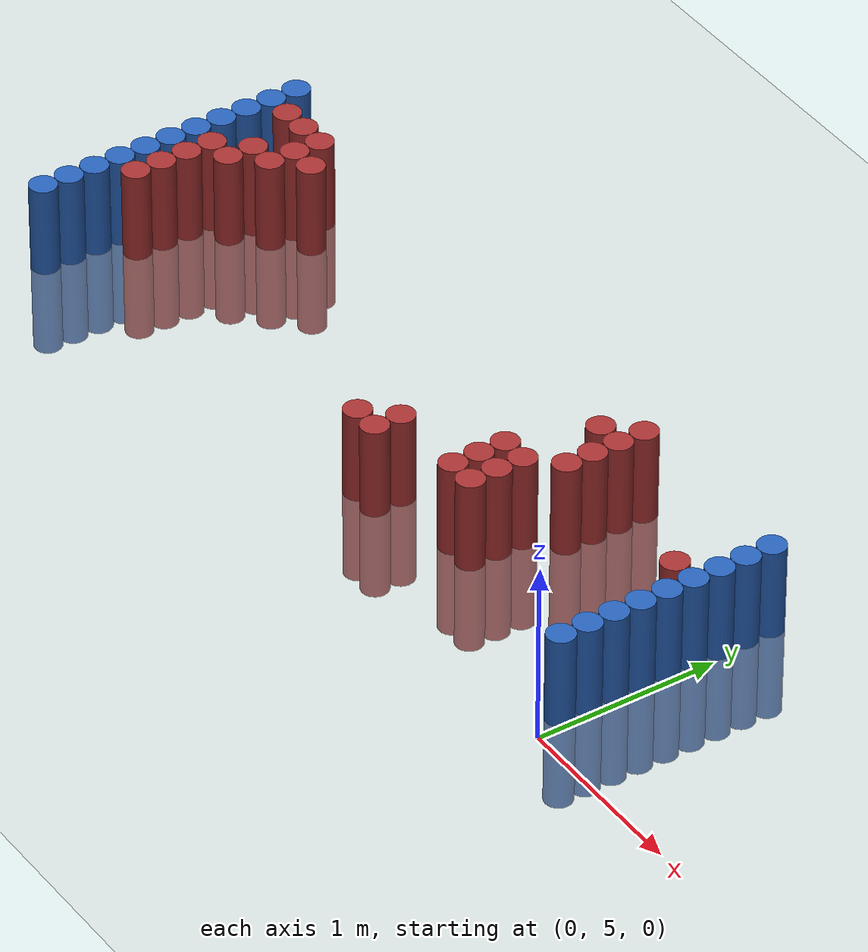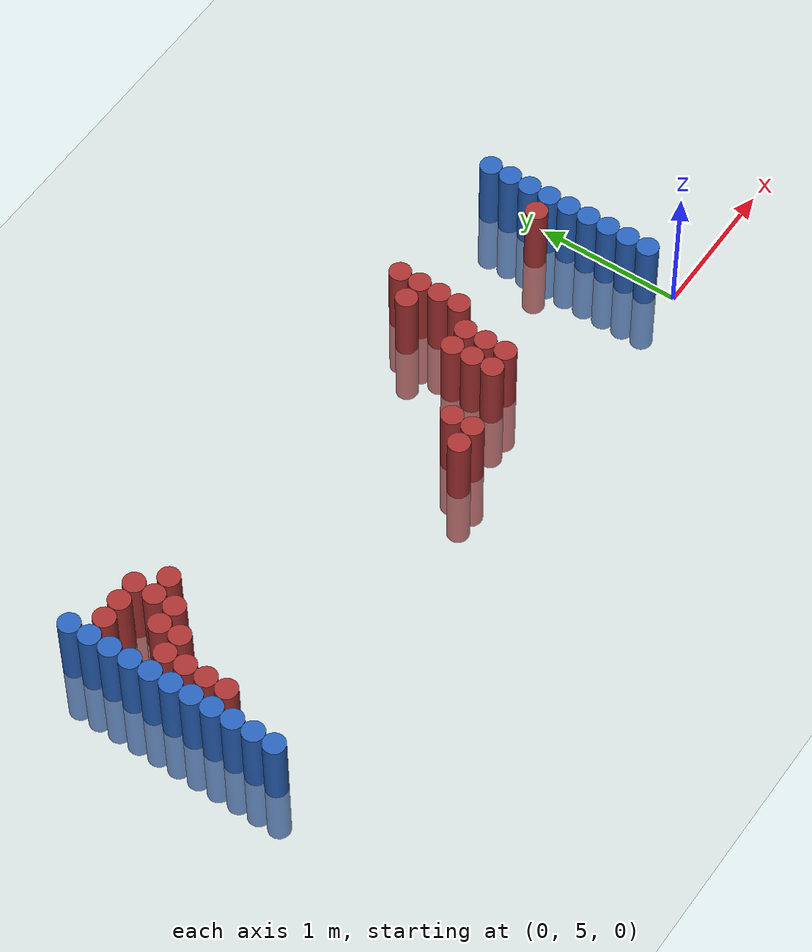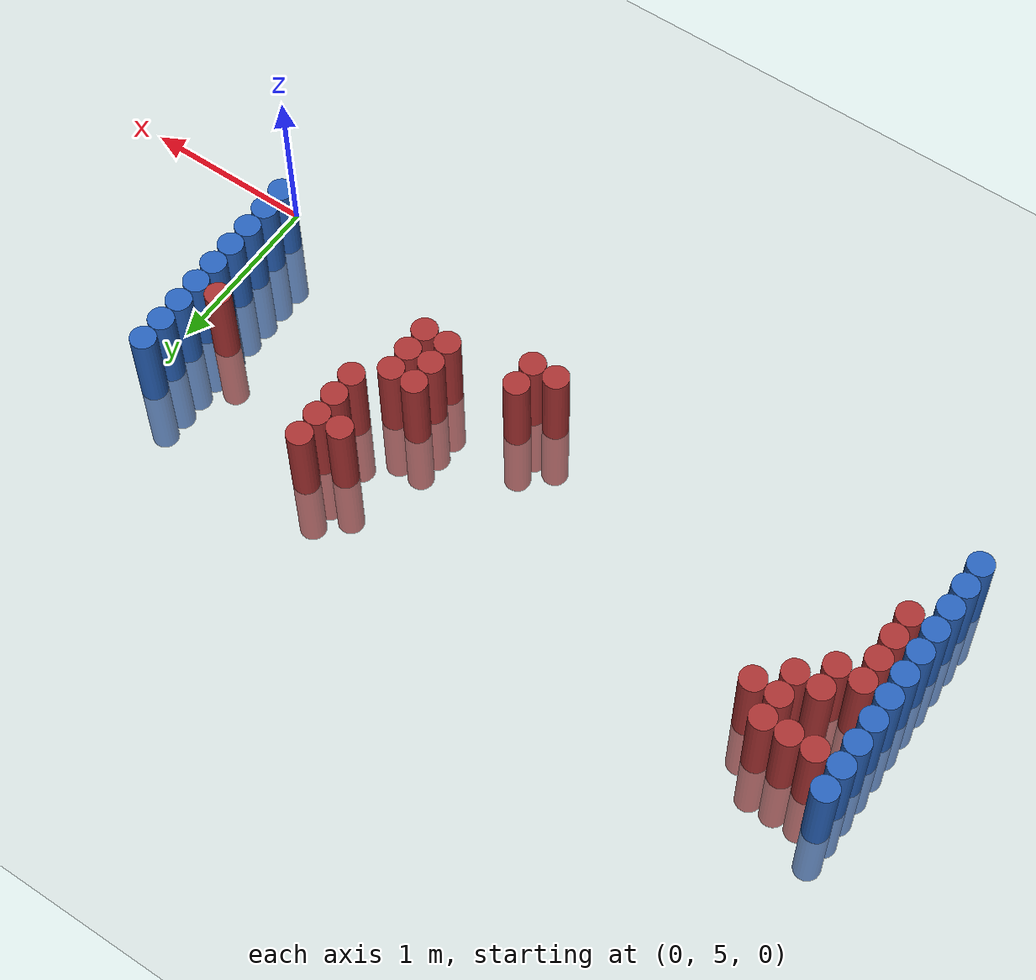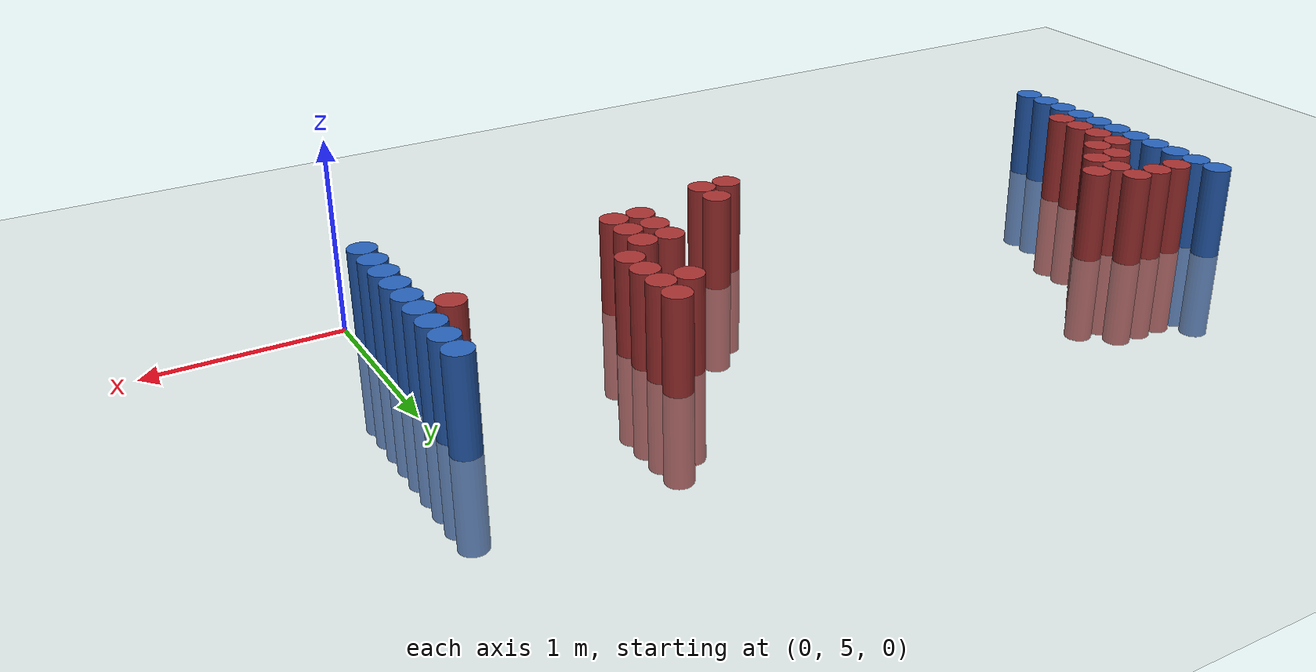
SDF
<sdf version="1.6">
 <world name="default">
  <model name="ground_plane">
   <static>1</static>
   <link name="link">
    <collision name="collision">
     <geometry><plane><normal>0 0 1</normal><size>100 100</size></plane></geometry>
     <surface><friction><ode><mu>100</mu><mu2>50</mu2></ode></friction></surface>
    </collision>
    <visual name="visual">
     <cast_shadows>0</cast_shadows>
     <geometry><plane><normal>0 0 1</normal><size>100 100</size></plane></geometry>
     <material>
      <script><uri>file://media/materials/scripts/gazebo.material</uri><name>Gazebo/Grey</name></script>
     </material>
    </visual>
   </link>
  </model>
  <model name="unit_cylinder_95">
   <static>1</static>
   <pose>-4.425000 5.025000 0.000000 0.000000 0.000000 0.000000</pose>
   <link name="link">
    <inertial>
     <mass>1</mass>
     <inertia><ixx>0.145833</ixx><ixy>0</ixy><ixz>0</ixz><iyy>0.145833</iyy><iyz>0</iyz><izz>0.125</izz></inertia>
    </inertial>
    <collision name="collision">
     <geometry><cylinder><radius>0.075000</radius><length>1</length></cylinder></geometry>
    </collision>
    <visual name="visual">
     <geometry><cylinder><radius>0.075000</radius><length>1</length></cylinder></geometry>
     <material>
      <ambient>0.152000 0.379000 0.720000 1</ambient>
      <diffuse>0.152000 0.379000 0.720000 1</diffuse>
     </material>
     <material>
      <script><name>Gazebo/Grey</name><uri>file://media/materials/scripts/gazebo.material</uri></script>
     </material>
    </visual>
   </link>
  </model>
  <model name="unit_cylinder_96">
   <static>1</static>
   <pose>-4.425000 5.175000 0.000000 0.000000 0.000000 0.000000</pose>
   <link name="link">
    <inertial>
     <mass>1</mass>
     <inertia><ixx>0.145833</ixx><ixy>0</ixy><ixz>0</ixz><iyy>0.145833</iyy><iyz>0</iyz><izz>0.125</izz></inertia>
    </inertial>
    <collision name="collision">
     <geometry><cylinder><radius>0.075000</radius><length>1</length></cylinder></geometry>
    </collision>
    <visual name="visual">
     <geometry><cylinder><radius>0.075000</radius><length>1</length></cylinder></geometry>
     <material>
      <ambient>0.152000 0.379000 0.720000 1</ambient>
      <diffuse>0.152000 0.379000 0.720000 1</diffuse>
     </material>
     <material>
      <script><name>Gazebo/Grey</name><uri>file://media/materials/scripts/gazebo.material</uri></script>
     </material>
    </visual>
   </link>
  </model>
  <model name="unit_cylinder_97">
   <static>1</static>
   <pose>-4.425000 5.325000 0.000000 0.000000 0.000000 0.000000</pose>
   <link name="link">
    <inertial>
     <mass>1</mass>
     <inertia><ixx>0.145833</ixx><ixy>0</ixy><ixz>0</ixz><iyy>0.145833</iyy><iyz>0</iyz><izz>0.125</izz></inertia>
    </inertial>
    <collision name="collision">
     <geometry><cylinder><radius>0.075000</radius><length>1</length></cylinder></geometry>
    </collision>
    <visual name="visual">
     <geometry><cylinder><radius>0.075000</radius><length>1</length></cylinder></geometry>
     <material>
      <ambient>0.152000 0.379000 0.720000 1</ambient>
      <diffuse>0.152000 0.379000 0.720000 1</diffuse>
     </material>
     <material>
      <script><name>Gazebo/Grey</name><uri>file://media/materials/scripts/gazebo.material</uri></script>
     </material>
    </visual>
   </link>
  </model>
  <model name="unit_cylinder_98">
   <static>1</static>
   <pose>-4.425000 5.475000 0.000000 0.000000 0.000000 0.000000</pose>
   <link name="link">
    <inertial>
     <mass>1</mass>
     <inertia><ixx>0.145833</ixx><ixy>0</ixy><ixz>0</ixz><iyy>0.145833</iyy><iyz>0</iyz><izz>0.125</izz></inertia>
    </inertial>
    <collision name="collision">
     <geometry><cylinder><radius>0.075000</radius><length>1</length></cylinder></geometry>
    </collision>
    <visual name="visual">
     <geometry><cylinder><radius>0.075000</radius><length>1</length></cylinder></geometry>
     <material>
      <ambient>0.152000 0.379000 0.720000 1</ambient>
      <diffuse>0.152000 0.379000 0.720000 1</diffuse>
     </material>
     <material>
      <script><name>Gazebo/Grey</name><uri>file://media/materials/scripts/gazebo.material</uri></script>
     </material>
    </visual>
   </link>
  </model>
  <model name="unit_cylinder_99">
   <static>1</static>
   <pose>-4.425000 5.625000 0.000000 0.000000 0.000000 0.000000</pose>
   <link name="link">
    <inertial>
     <mass>1</mass>
     <inertia><ixx>0.145833</ixx><ixy>0</ixy><ixz>0</ixz><iyy>0.145833</iyy><iyz>0</iyz><izz>0.125</izz></inertia>
    </inertial>
    <collision name="collision">
     <geometry><cylinder><radius>0.075000</radius><length>1</length></cylinder></geometry>
    </collision>
    <visual name="visual">
     <geometry><cylinder><radius>0.075000</radius><length>1</length></cylinder></geometry>
     <material>
      <ambient>0.152000 0.379000 0.720000 1</ambient>
      <diffuse>0.152000 0.379000 0.720000 1</diffuse>
     </material>
     <material>
      <script><name>Gazebo/Grey</name><uri>file://media/materials/scripts/gazebo.material</uri></script>
     </material>
    </visual>
   </link>
  </model>
  <model name="unit_cylinder_100">
   <static>1</static>
   <pose>-4.425000 5.775000 0.000000 0.000000 0.000000 0.000000</pose>
   <link name="link">
    <inertial>
     <mass>1</mass>
     <inertia><ixx>0.145833</ixx><ixy>0</ixy><ixz>0</ixz><iyy>0.145833</iyy><iyz>0</iyz><izz>0.125</izz></inertia>
    </inertial>
    <collision name="collision">
     <geometry><cylinder><radius>0.075000</radius><length>1</length></cylinder></geometry>
    </collision>
    <visual name="visual">
     <geometry><cylinder><radius>0.075000</radius><length>1</length></cylinder></geometry>
     <material>
      <ambient>0.152000 0.379000 0.720000 1</ambient>
      <diffuse>0.152000 0.379000 0.720000 1</diffuse>
     </material>
     <material>
      <script><name>Gazebo/Grey</name><uri>file://media/materials/scripts/gazebo.material</uri></script>
     </material>
    </visual>
   </link>
  </model>
  <model name="unit_cylinder_101">
   <static>1</static>
   <pose>-4.425000 5.925000 0.000000 0.000000 0.000000 0.000000</pose>
   <link name="link">
    <inertial>
     <mass>1</mass>
     <inertia><ixx>0.145833</ixx><ixy>0</ixy><ixz>0</ixz><iyy>0.145833</iyy><iyz>0</iyz><izz>0.125</izz></inertia>
    </inertial>
    <collision name="collision">
     <geometry><cylinder><radius>0.075000</radius><length>1</length></cylinder></geometry>
    </collision>
    <visual name="visual">
     <geometry><cylinder><radius>0.075000</radius><length>1</length></cylinder></geometry>
     <material>
      <ambient>0.152000 0.379000 0.720000 1</ambient>
      <diffuse>0.152000 0.379000 0.720000 1</diffuse>
     </material>
     <material>
      <script><name>Gazebo/Grey</name><uri>file://media/materials/scripts/gazebo.material</uri></script>
     </material>
    </visual>
   </link>
  </model>
  <model name="unit_cylinder_102">
   <static>1</static>
   <pose>-4.425000 6.075000 0.000000 0.000000 0.000000 0.000000</pose>
   <link name="link">
    <inertial>
     <mass>1</mass>
     <inertia><ixx>0.145833</ixx><ixy>0</ixy><ixz>0</ixz><iyy>0.145833</iyy><iyz>0</iyz><izz>0.125</izz></inertia>
    </inertial>
    <collision name="collision">
     <geometry><cylinder><radius>0.075000</radius><length>1</length></cylinder></geometry>
    </collision>
    <visual name="visual">
     <geometry><cylinder><radius>0.075000</radius><length>1</length></cylinder></geometry>
     <material>
      <ambient>0.152000 0.379000 0.720000 1</ambient>
      <diffuse>0.152000 0.379000 0.720000 1</diffuse>
     </material>
     <material>
      <script><name>Gazebo/Grey</name><uri>file://media/materials/scripts/gazebo.material</uri></script>
     </material>
    </visual>
   </link>
  </model>
  <model name="unit_cylinder_103">
   <static>1</static>
   <pose>-4.425000 6.225000 0.000000 0.000000 0.000000 0.000000</pose>
   <link name="link">
    <inertial>
     <mass>1</mass>
     <inertia><ixx>0.145833</ixx><ixy>0</ixy><ixz>0</ixz><iyy>0.145833</iyy><iyz>0</iyz><izz>0.125</izz></inertia>
    </inertial>
    <collision name="collision">
     <geometry><cylinder><radius>0.075000</radius><length>1</length></cylinder></geometry>
    </collision>
    <visual name="visual">
     <geometry><cylinder><radius>0.075000</radius><length>1</length></cylinder></geometry>
     <material>
      <ambient>0.152000 0.379000 0.720000 1</ambient>
      <diffuse>0.152000 0.379000 0.720000 1</diffuse>
     </material>
     <material>
      <script><name>Gazebo/Grey</name><uri>file://media/materials/scripts/gazebo.material</uri></script>
     </material>
    </visual>
   </link>
  </model>
  <model name="unit_cylinder_104">
   <static>1</static>
   <pose>-4.425000 6.375000 0.000000 0.000000 0.000000 0.000000</pose>
   <link name="link">
    <inertial>
     <mass>1</mass>
     <inertia><ixx>0.145833</ixx><ixy>0</ixy><ixz>0</ixz><iyy>0.145833</iyy><iyz>0</iyz><izz>0.125</izz></inertia>
    </inertial>
    <collision name="collision">
     <geometry><cylinder><radius>0.075000</radius><length>1</length></cylinder></geometry>
    </collision>
    <visual name="visual">
     <geometry><cylinder><radius>0.075000</radius><length>1</length></cylinder></geometry>
     <material>
      <ambient>0.152000 0.379000 0.720000 1</ambient>
      <diffuse>0.152000 0.379000 0.720000 1</diffuse>
     </material>
     <material>
      <script><name>Gazebo/Grey</name><uri>file://media/materials/scripts/gazebo.material</uri></script>
     </material>
    </visual>
   </link>
  </model>
  <model name="unit_cylinder_105">
   <static>1</static>
   <pose>-4.425000 6.525000 0.000000 0.000000 0.000000 0.000000</pose>
   <link name="link">
    <inertial>
     <mass>1</mass>
     <inertia><ixx>0.145833</ixx><ixy>0</ixy><ixz>0</ixz><iyy>0.145833</iyy><iyz>0</iyz><izz>0.125</izz></inertia>
    </inertial>
    <collision name="collision">
     <geometry><cylinder><radius>0.075000</radius><length>1</length></cylinder></geometry>
    </collision>
    <visual name="visual">
     <geometry><cylinder><radius>0.075000</radius><length>1</length></cylinder></geometry>
     <material>
      <ambient>0.152000 0.379000 0.720000 1</ambient>
      <diffuse>0.152000 0.379000 0.720000 1</diffuse>
     </material>
     <material>
      <script><name>Gazebo/Grey</name><uri>file://media/materials/scripts/gazebo.material</uri></script>
     </material>
    </visual>
   </link>
  </model>
  <model name="unit_cylinder_126">
   <static>1</static>
   <pose>-4.275000 5.475000 0.000000 0.000000 0.000000 0.000000</pose>
   <link name="link">
    <inertial>
     <mass>1</mass>
     <inertia><ixx>0.145833</ixx><ixy>0</ixy><ixz>0</ixz><iyy>0.145833</iyy><iyz>0</iyz><izz>0.125</izz></inertia>
    </inertial>
    <collision name="collision">
     <geometry><cylinder><radius>0.075000</radius><length>1</length></cylinder></geometry>
    </collision>
    <visual name="visual">
     <geometry><cylinder><radius>0.075000</radius><length>1</length></cylinder></geometry>
     <material>
      <ambient>0.648000 0.192000 0.192000 1</ambient>
      <diffuse>0.648000 0.192000 0.192000 1</diffuse>
     </material>
     <material>
      <script><name>Gazebo/Grey</name><uri>file://media/materials/scripts/gazebo.material</uri></script>
     </material>
    </visual>
   </link>
  </model>
  <model name="unit_cylinder_127">
   <static>1</static>
   <pose>-4.275000 5.625000 0.000000 0.000000 0.000000 0.000000</pose>
   <link name="link">
    <inertial>
     <mass>1</mass>
     <inertia><ixx>0.145833</ixx><ixy>0</ixy><ixz>0</ixz><iyy>0.145833</iyy><iyz>0</iyz><izz>0.125</izz></inertia>
    </inertial>
    <collision name="collision">
     <geometry><cylinder><radius>0.075000</radius><length>1</length></cylinder></geometry>
    </collision>
    <visual name="visual">
     <geometry><cylinder><radius>0.075000</radius><length>1</length></cylinder></geometry>
     <material>
      <ambient>0.648000 0.192000 0.192000 1</ambient>
      <diffuse>0.648000 0.192000 0.192000 1</diffuse>
     </material>
     <material>
      <script><name>Gazebo/Grey</name><uri>file://media/materials/scripts/gazebo.material</uri></script>
     </material>
    </visual>
   </link>
  </model>
  <model name="unit_cylinder_128">
   <static>1</static>
   <pose>-4.275000 5.775000 0.000000 0.000000 0.000000 0.000000</pose>
   <link name="link">
    <inertial>
     <mass>1</mass>
     <inertia><ixx>0.145833</ixx><ixy>0</ixy><ixz>0</ixz><iyy>0.145833</iyy><iyz>0</iyz><izz>0.125</izz></inertia>
    </inertial>
    <collision name="collision">
     <geometry><cylinder><radius>0.075000</radius><length>1</length></cylinder></geometry>
    </collision>
    <visual name="visual">
     <geometry><cylinder><radius>0.075000</radius><length>1</length></cylinder></geometry>
     <material>
      <ambient>0.648000 0.192000 0.192000 1</ambient>
      <diffuse>0.648000 0.192000 0.192000 1</diffuse>
     </material>
     <material>
      <script><name>Gazebo/Grey</name><uri>file://media/materials/scripts/gazebo.material</uri></script>
     </material>
    </visual>
   </link>
  </model>
  <model name="unit_cylinder_129">
   <static>1</static>
   <pose>-4.275000 5.925000 0.000000 0.000000 0.000000 0.000000</pose>
   <link name="link">
    <inertial>
     <mass>1</mass>
     <inertia><ixx>0.145833</ixx><ixy>0</ixy><ixz>0</ixz><iyy>0.145833</iyy><iyz>0</iyz><izz>0.125</izz></inertia>
    </inertial>
    <collision name="collision">
     <geometry><cylinder><radius>0.075000</radius><length>1</length></cylinder></geometry>
    </collision>
    <visual name="visual">
     <geometry><cylinder><radius>0.075000</radius><length>1</length></cylinder></geometry>
     <material>
      <ambient>0.648000 0.192000 0.192000 1</ambient>
      <diffuse>0.648000 0.192000 0.192000 1</diffuse>
     </material>
     <material>
      <script><name>Gazebo/Grey</name><uri>file://media/materials/scripts/gazebo.material</uri></script>
     </material>
    </visual>
   </link>
  </model>
  <model name="unit_cylinder_130">
   <static>1</static>
   <pose>-4.275000 6.375000 0.000000 0.000000 0.000000 0.000000</pose>
   <link name="link">
    <inertial>
     <mass>1</mass>
     <inertia><ixx>0.145833</ixx><ixy>0</ixy><ixz>0</ixz><iyy>0.145833</iyy><iyz>0</iyz><izz>0.125</izz></inertia>
    </inertial>
    <collision name="collision">
     <geometry><cylinder><radius>0.075000</radius><length>1</length></cylinder></geometry>
    </collision>
    <visual name="visual">
     <geometry><cylinder><radius>0.075000</radius><length>1</length></cylinder></geometry>
     <material>
      <ambient>0.648000 0.192000 0.192000 1</ambient>
      <diffuse>0.648000 0.192000 0.192000 1</diffuse>
     </material>
     <material>
      <script><name>Gazebo/Grey</name><uri>file://media/materials/scripts/gazebo.material</uri></script>
     </material>
    </visual>
   </link>
  </model>
  <model name="unit_cylinder_134">
   <static>1</static>
   <pose>-4.125000 5.925000 0.000000 0.000000 0.000000 0.000000</pose>
   <link name="link">
    <inertial>
     <mass>1</mass>
     <inertia><ixx>0.145833</ixx><ixy>0</ixy><ixz>0</ixz><iyy>0.145833</iyy><iyz>0</iyz><izz>0.125</izz></inertia>
    </inertial>
    <collision name="collision">
     <geometry><cylinder><radius>0.075000</radius><length>1</length></cylinder></geometry>
    </collision>
    <visual name="visual">
     <geometry><cylinder><radius>0.075000</radius><length>1</length></cylinder></geometry>
     <material>
      <ambient>0.648000 0.192000 0.192000 1</ambient>
      <diffuse>0.648000 0.192000 0.192000 1</diffuse>
     </material>
     <material>
      <script><name>Gazebo/Grey</name><uri>file://media/materials/scripts/gazebo.material</uri></script>
     </material>
    </visual>
   </link>
  </model>
  <model name="unit_cylinder_135">
   <static>1</static>
   <pose>-4.125000 6.075000 0.000000 0.000000 0.000000 0.000000</pose>
   <link name="link">
    <inertial>
     <mass>1</mass>
     <inertia><ixx>0.145833</ixx><ixy>0</ixy><ixz>0</ixz><iyy>0.145833</iyy><iyz>0</iyz><izz>0.125</izz></inertia>
    </inertial>
    <collision name="collision">
     <geometry><cylinder><radius>0.075000</radius><length>1</length></cylinder></geometry>
    </collision>
    <visual name="visual">
     <geometry><cylinder><radius>0.075000</radius><length>1</length></cylinder></geometry>
     <material>
      <ambient>0.648000 0.192000 0.192000 1</ambient>
      <diffuse>0.648000 0.192000 0.192000 1</diffuse>
     </material>
     <material>
      <script><name>Gazebo/Grey</name><uri>file://media/materials/scripts/gazebo.material</uri></script>
     </material>
    </visual>
   </link>
  </model>
  <model name="unit_cylinder_136">
   <static>1</static>
   <pose>-4.125000 6.375000 0.000000 0.000000 0.000000 0.000000</pose>
   <link name="link">
    <inertial>
     <mass>1</mass>
     <inertia><ixx>0.145833</ixx><ixy>0</ixy><ixz>0</ixz><iyy>0.145833</iyy><iyz>0</iyz><izz>0.125</izz></inertia>
    </inertial>
    <collision name="collision">
     <geometry><cylinder><radius>0.075000</radius><length>1</length></cylinder></geometry>
    </collision>
    <visual name="visual">
     <geometry><cylinder><radius>0.075000</radius><length>1</length></cylinder></geometry>
     <material>
      <ambient>0.648000 0.192000 0.192000 1</ambient>
      <diffuse>0.648000 0.192000 0.192000 1</diffuse>
     </material>
     <material>
      <script><name>Gazebo/Grey</name><uri>file://media/materials/scripts/gazebo.material</uri></script>
     </material>
    </visual>
   </link>
  </model>
  <model name="unit_cylinder_137">
   <static>1</static>
   <pose>-3.975000 6.075000 0.000000 0.000000 0.000000 0.000000</pose>
   <link name="link">
    <inertial>
     <mass>1</mass>
     <inertia><ixx>0.145833</ixx><ixy>0</ixy><ixz>0</ixz><iyy>0.145833</iyy><iyz>0</iyz><izz>0.125</izz></inertia>
    </inertial>
    <collision name="collision">
     <geometry><cylinder><radius>0.075000</radius><length>1</length></cylinder></geometry>
    </collision>
    <visual name="visual">
     <geometry><cylinder><radius>0.075000</radius><length>1</length></cylinder></geometry>
     <material>
      <ambient>0.648000 0.192000 0.192000 1</ambient>
      <diffuse>0.648000 0.192000 0.192000 1</diffuse>
     </material>
     <material>
      <script><name>Gazebo/Grey</name><uri>file://media/materials/scripts/gazebo.material</uri></script>
     </material>
    </visual>
   </link>
  </model>
  <model name="unit_cylinder_138">
   <static>1</static>
   <pose>-3.975000 6.225000 0.000000 0.000000 0.000000 0.000000</pose>
   <link name="link">
    <inertial>
     <mass>1</mass>
     <inertia><ixx>0.145833</ixx><ixy>0</ixy><ixz>0</ixz><iyy>0.145833</iyy><iyz>0</iyz><izz>0.125</izz></inertia>
    </inertial>
    <collision name="collision">
     <geometry><cylinder><radius>0.075000</radius><length>1</length></cylinder></geometry>
    </collision>
    <visual name="visual">
     <geometry><cylinder><radius>0.075000</radius><length>1</length></cylinder></geometry>
     <material>
      <ambient>0.648000 0.192000 0.192000 1</ambient>
      <diffuse>0.648000 0.192000 0.192000 1</diffuse>
     </material>
     <material>
      <script><name>Gazebo/Grey</name><uri>file://media/materials/scripts/gazebo.material</uri></script>
     </material>
    </visual>
   </link>
  </model>
  <model name="unit_cylinder_139">
   <static>1</static>
   <pose>-3.975000 6.375000 0.000000 0.000000 0.000000 0.000000</pose>
   <link name="link">
    <inertial>
     <mass>1</mass>
     <inertia><ixx>0.145833</ixx><ixy>0</ixy><ixz>0</ixz><iyy>0.145833</iyy><iyz>0</iyz><izz>0.125</izz></inertia>
    </inertial>
    <collision name="collision">
     <geometry><cylinder><radius>0.075000</radius><length>1</length></cylinder></geometry>
    </collision>
    <visual name="visual">
     <geometry><cylinder><radius>0.075000</radius><length>1</length></cylinder></geometry>
     <material>
      <ambient>0.648000 0.192000 0.192000 1</ambient>
      <diffuse>0.648000 0.192000 0.192000 1</diffuse>
     </material>
     <material>
      <script><name>Gazebo/Grey</name><uri>file://media/materials/scripts/gazebo.material</uri></script>
     </material>
    </visual>
   </link>
  </model>
  <model name="unit_cylinder_140">
   <static>1</static>
   <pose>-3.825000 6.225000 0.000000 0.000000 0.000000 0.000000</pose>
   <link name="link">
    <inertial>
     <mass>1</mass>
     <inertia><ixx>0.145833</ixx><ixy>0</ixy><ixz>0</ixz><iyy>0.145833</iyy><iyz>0</iyz><izz>0.125</izz></inertia>
    </inertial>
    <collision name="collision">
     <geometry><cylinder><radius>0.075000</radius><length>1</length></cylinder></geometry>
    </collision>
    <visual name="visual">
     <geometry><cylinder><radius>0.075000</radius><length>1</length></cylinder></geometry>
     <material>
      <ambient>0.648000 0.192000 0.192000 1</ambient>
      <diffuse>0.648000 0.192000 0.192000 1</diffuse>
     </material>
     <material>
      <script><name>Gazebo/Grey</name><uri>file://media/materials/scripts/gazebo.material</uri></script>
     </material>
    </visual>
   </link>
  </model>
  <model name="unit_cylinder_145">
   <static>1</static>
   <pose>-2.025000 5.325000 0.000000 0.000000 0.000000 0.000000</pose>
   <link name="link">
    <inertial>
     <mass>1</mass>
     <inertia><ixx>0.145833</ixx><ixy>0</ixy><ixz>0</ixz><iyy>0.145833</iyy><iyz>0</iyz><izz>0.125</izz></inertia>
    </inertial>
    <collision name="collision">
     <geometry><cylinder><radius>0.075000</radius><length>1</length></cylinder></geometry>
    </collision>
    <visual name="visual">
     <geometry><cylinder><radius>0.075000</radius><length>1</length></cylinder></geometry>
     <material>
      <ambient>0.648000 0.192000 0.192000 1</ambient>
      <diffuse>0.648000 0.192000 0.192000 1</diffuse>
     </material>
     <material>
      <script><name>Gazebo/Grey</name><uri>file://media/materials/scripts/gazebo.material</uri></script>
     </material>
    </visual>
   </link>
  </model>
  <model name="unit_cylinder_149">
   <static>1</static>
   <pose>-1.875000 5.325000 0.000000 0.000000 0.000000 0.000000</pose>
   <link name="link">
    <inertial>
     <mass>1</mass>
     <inertia><ixx>0.145833</ixx><ixy>0</ixy><ixz>0</ixz><iyy>0.145833</iyy><iyz>0</iyz><izz>0.125</izz></inertia>
    </inertial>
    <collision name="collision">
     <geometry><cylinder><radius>0.075000</radius><length>1</length></cylinder></geometry>
    </collision>
    <visual name="visual">
     <geometry><cylinder><radius>0.075000</radius><length>1</length></cylinder></geometry>
     <material>
      <ambient>0.648000 0.192000 0.192000 1</ambient>
      <diffuse>0.648000 0.192000 0.192000 1</diffuse>
     </material>
     <material>
      <script><name>Gazebo/Grey</name><uri>file://media/materials/scripts/gazebo.material</uri></script>
     </material>
    </visual>
   </link>
  </model>
  <model name="unit_cylinder_150">
   <static>1</static>
   <pose>-1.875000 5.475000 0.000000 0.000000 0.000000 0.000000</pose>
   <link name="link">
    <inertial>
     <mass>1</mass>
     <inertia><ixx>0.145833</ixx><ixy>0</ixy><ixz>0</ixz><iyy>0.145833</iyy><iyz>0</iyz><izz>0.125</izz></inertia>
    </inertial>
    <collision name="collision">
     <geometry><cylinder><radius>0.075000</radius><length>1</length></cylinder></geometry>
    </collision>
    <visual name="visual">
     <geometry><cylinder><radius>0.075000</radius><length>1</length></cylinder></geometry>
     <material>
      <ambient>0.648000 0.192000 0.192000 1</ambient>
      <diffuse>0.648000 0.192000 0.192000 1</diffuse>
     </material>
     <material>
      <script><name>Gazebo/Grey</name><uri>file://media/materials/scripts/gazebo.material</uri></script>
     </material>
    </visual>
   </link>
  </model>
  <model name="unit_cylinder_163">
   <static>1</static>
   <pose>-1.425000 5.475000 0.000000 0.000000 0.000000 0.000000</pose>
   <link name="link">
    <inertial>
     <mass>1</mass>
     <inertia><ixx>0.145833</ixx><ixy>0</ixy><ixz>0</ixz><iyy>0.145833</iyy><iyz>0</iyz><izz>0.125</izz></inertia>
    </inertial>
    <collision name="collision">
     <geometry><cylinder><radius>0.075000</radius><length>1</length></cylinder></geometry>
    </collision>
    <visual name="visual">
     <geometry><cylinder><radius>0.075000</radius><length>1</length></cylinder></geometry>
     <material>
      <ambient>0.648000 0.192000 0.192000 1</ambient>
      <diffuse>0.648000 0.192000 0.192000 1</diffuse>
     </material>
     <material>
      <script><name>Gazebo/Grey</name><uri>file://media/materials/scripts/gazebo.material</uri></script>
     </material>
    </visual>
   </link>
  </model>
  <model name="unit_cylinder_164">
   <static>1</static>
   <pose>-1.425000 5.625000 0.000000 0.000000 0.000000 0.000000</pose>
   <link name="link">
    <inertial>
     <mass>1</mass>
     <inertia><ixx>0.145833</ixx><ixy>0</ixy><ixz>0</ixz><iyy>0.145833</iyy><iyz>0</iyz><izz>0.125</izz></inertia>
    </inertial>
    <collision name="collision">
     <geometry><cylinder><radius>0.075000</radius><length>1</length></cylinder></geometry>
    </collision>
    <visual name="visual">
     <geometry><cylinder><radius>0.075000</radius><length>1</length></cylinder></geometry>
     <material>
      <ambient>0.648000 0.192000 0.192000 1</ambient>
      <diffuse>0.648000 0.192000 0.192000 1</diffuse>
     </material>
     <material>
      <script><name>Gazebo/Grey</name><uri>file://media/materials/scripts/gazebo.material</uri></script>
     </material>
    </visual>
   </link>
  </model>
  <model name="unit_cylinder_165">
   <static>1</static>
   <pose>-1.425000 5.775000 0.000000 0.000000 0.000000 0.000000</pose>
   <link name="link">
    <inertial>
     <mass>1</mass>
     <inertia><ixx>0.145833</ixx><ixy>0</ixy><ixz>0</ixz><iyy>0.145833</iyy><iyz>0</iyz><izz>0.125</izz></inertia>
    </inertial>
    <collision name="collision">
     <geometry><cylinder><radius>0.075000</radius><length>1</length></cylinder></geometry>
    </collision>
    <visual name="visual">
     <geometry><cylinder><radius>0.075000</radius><length>1</length></cylinder></geometry>
     <material>
      <ambient>0.648000 0.192000 0.192000 1</ambient>
      <diffuse>0.648000 0.192000 0.192000 1</diffuse>
     </material>
     <material>
      <script><name>Gazebo/Grey</name><uri>file://media/materials/scripts/gazebo.material</uri></script>
     </material>
    </visual>
   </link>
  </model>
  <model name="unit_cylinder_168">
   <static>1</static>
   <pose>-1.275000 5.475000 0.000000 0.000000 0.000000 0.000000</pose>
   <link name="link">
    <inertial>
     <mass>1</mass>
     <inertia><ixx>0.145833</ixx><ixy>0</ixy><ixz>0</ixz><iyy>0.145833</iyy><iyz>0</iyz><izz>0.125</izz></inertia>
    </inertial>
    <collision name="collision">
     <geometry><cylinder><radius>0.075000</radius><length>1</length></cylinder></geometry>
    </collision>
    <visual name="visual">
     <geometry><cylinder><radius>0.075000</radius><length>1</length></cylinder></geometry>
     <material>
      <ambient>0.648000 0.192000 0.192000 1</ambient>
      <diffuse>0.648000 0.192000 0.192000 1</diffuse>
     </material>
     <material>
      <script><name>Gazebo/Grey</name><uri>file://media/materials/scripts/gazebo.material</uri></script>
     </material>
    </visual>
   </link>
  </model>
  <model name="unit_cylinder_169">
   <static>1</static>
   <pose>-1.275000 5.625000 0.000000 0.000000 0.000000 0.000000</pose>
   <link name="link">
    <inertial>
     <mass>1</mass>
     <inertia><ixx>0.145833</ixx><ixy>0</ixy><ixz>0</ixz><iyy>0.145833</iyy><iyz>0</iyz><izz>0.125</izz></inertia>
    </inertial>
    <collision name="collision">
     <geometry><cylinder><radius>0.075000</radius><length>1</length></cylinder></geometry>
    </collision>
    <visual name="visual">
     <geometry><cylinder><radius>0.075000</radius><length>1</length></cylinder></geometry>
     <material>
      <ambient>0.648000 0.192000 0.192000 1</ambient>
      <diffuse>0.648000 0.192000 0.192000 1</diffuse>
     </material>
     <material>
      <script><name>Gazebo/Grey</name><uri>file://media/materials/scripts/gazebo.material</uri></script>
     </material>
    </visual>
   </link>
  </model>
  <model name="unit_cylinder_170">
   <static>1</static>
   <pose>-1.275000 5.775000 0.000000 0.000000 0.000000 0.000000</pose>
   <link name="link">
    <inertial>
     <mass>1</mass>
     <inertia><ixx>0.145833</ixx><ixy>0</ixy><ixz>0</ixz><iyy>0.145833</iyy><iyz>0</iyz><izz>0.125</izz></inertia>
    </inertial>
    <collision name="collision">
     <geometry><cylinder><radius>0.075000</radius><length>1</length></cylinder></geometry>
    </collision>
    <visual name="visual">
     <geometry><cylinder><radius>0.075000</radius><length>1</length></cylinder></geometry>
     <material>
      <ambient>0.648000 0.192000 0.192000 1</ambient>
      <diffuse>0.648000 0.192000 0.192000 1</diffuse>
     </material>
     <material>
      <script><name>Gazebo/Grey</name><uri>file://media/materials/scripts/gazebo.material</uri></script>
     </material>
    </visual>
   </link>
  </model>
  <model name="unit_cylinder_171">
   <static>1</static>
   <pose>-1.275000 6.225000 0.000000 0.000000 0.000000 0.000000</pose>
   <link name="link">
    <inertial>
     <mass>1</mass>
     <inertia><ixx>0.145833</ixx><ixy>0</ixy><ixz>0</ixz><iyy>0.145833</iyy><iyz>0</iyz><izz>0.125</izz></inertia>
    </inertial>
    <collision name="collision">
     <geometry><cylinder><radius>0.075000</radius><length>1</length></cylinder></geometry>
    </collision>
    <visual name="visual">
     <geometry><cylinder><radius>0.075000</radius><length>1</length></cylinder></geometry>
     <material>
      <ambient>0.648000 0.192000 0.192000 1</ambient>
      <diffuse>0.648000 0.192000 0.192000 1</diffuse>
     </material>
     <material>
      <script><name>Gazebo/Grey</name><uri>file://media/materials/scripts/gazebo.material</uri></script>
     </material>
    </visual>
   </link>
  </model>
  <model name="unit_cylinder_176">
   <static>1</static>
   <pose>-1.125000 5.925000 0.000000 0.000000 0.000000 0.000000</pose>
   <link name="link">
    <inertial>
     <mass>1</mass>
     <inertia><ixx>0.145833</ixx><ixy>0</ixy><ixz>0</ixz><iyy>0.145833</iyy><iyz>0</iyz><izz>0.125</izz></inertia>
    </inertial>
    <collision name="collision">
     <geometry><cylinder><radius>0.075000</radius><length>1</length></cylinder></geometry>
    </collision>
    <visual name="visual">
     <geometry><cylinder><radius>0.075000</radius><length>1</length></cylinder></geometry>
     <material>
      <ambient>0.648000 0.192000 0.192000 1</ambient>
      <diffuse>0.648000 0.192000 0.192000 1</diffuse>
     </material>
     <material>
      <script><name>Gazebo/Grey</name><uri>file://media/materials/scripts/gazebo.material</uri></script>
     </material>
    </visual>
   </link>
  </model>
  <model name="unit_cylinder_177">
   <static>1</static>
   <pose>-1.125000 6.075000 0.000000 0.000000 0.000000 0.000000</pose>
   <link name="link">
    <inertial>
     <mass>1</mass>
     <inertia><ixx>0.145833</ixx><ixy>0</ixy><ixz>0</ixz><iyy>0.145833</iyy><iyz>0</iyz><izz>0.125</izz></inertia>
    </inertial>
    <collision name="collision">
     <geometry><cylinder><radius>0.075000</radius><length>1</length></cylinder></geometry>
    </collision>
    <visual name="visual">
     <geometry><cylinder><radius>0.075000</radius><length>1</length></cylinder></geometry>
     <material>
      <ambient>0.648000 0.192000 0.192000 1</ambient>
      <diffuse>0.648000 0.192000 0.192000 1</diffuse>
     </material>
     <material>
      <script><name>Gazebo/Grey</name><uri>file://media/materials/scripts/gazebo.material</uri></script>
     </material>
    </visual>
   </link>
  </model>
  <model name="unit_cylinder_178">
   <static>1</static>
   <pose>-1.125000 6.225000 0.000000 0.000000 0.000000 0.000000</pose>
   <link name="link">
    <inertial>
     <mass>1</mass>
     <inertia><ixx>0.145833</ixx><ixy>0</ixy><ixz>0</ixz><iyy>0.145833</iyy><iyz>0</iyz><izz>0.125</izz></inertia>
    </inertial>
    <collision name="collision">
     <geometry><cylinder><radius>0.075000</radius><length>1</length></cylinder></geometry>
    </collision>
    <visual name="visual">
     <geometry><cylinder><radius>0.075000</radius><length>1</length></cylinder></geometry>
     <material>
      <ambient>0.648000 0.192000 0.192000 1</ambient>
      <diffuse>0.648000 0.192000 0.192000 1</diffuse>
     </material>
     <material>
      <script><name>Gazebo/Grey</name><uri>file://media/materials/scripts/gazebo.material</uri></script>
     </material>
    </visual>
   </link>
  </model>
  <model name="unit_cylinder_179">
   <static>1</static>
   <pose>-1.125000 6.375000 0.000000 0.000000 0.000000 0.000000</pose>
   <link name="link">
    <inertial>
     <mass>1</mass>
     <inertia><ixx>0.145833</ixx><ixy>0</ixy><ixz>0</ixz><iyy>0.145833</iyy><iyz>0</iyz><izz>0.125</izz></inertia>
    </inertial>
    <collision name="collision">
     <geometry><cylinder><radius>0.075000</radius><length>1</length></cylinder></geometry>
    </collision>
    <visual name="visual">
     <geometry><cylinder><radius>0.075000</radius><length>1</length></cylinder></geometry>
     <material>
      <ambient>0.648000 0.192000 0.192000 1</ambient>
      <diffuse>0.648000 0.192000 0.192000 1</diffuse>
     </material>
     <material>
      <script><name>Gazebo/Grey</name><uri>file://media/materials/scripts/gazebo.material</uri></script>
     </material>
    </visual>
   </link>
  </model>
  <model name="unit_cylinder_198">
   <static>1</static>
   <pose>-0.225000 5.925000 0.000000 0.000000 0.000000 0.000000</pose>
   <link name="link">
    <inertial>
     <mass>1</mass>
     <inertia><ixx>0.145833</ixx><ixy>0</ixy><ixz>0</ixz><iyy>0.145833</iyy><iyz>0</iyz><izz>0.125</izz></inertia>
    </inertial>
    <collision name="collision">
     <geometry><cylinder><radius>0.075000</radius><length>1</length></cylinder></geometry>
    </collision>
    <visual name="visual">
     <geometry><cylinder><radius>0.075000</radius><length>1</length></cylinder></geometry>
     <material>
      <ambient>0.648000 0.192000 0.192000 1</ambient>
      <diffuse>0.648000 0.192000 0.192000 1</diffuse>
     </material>
     <material>
      <script><name>Gazebo/Grey</name><uri>file://media/materials/scripts/gazebo.material</uri></script>
     </material>
    </visual>
   </link>
  </model>
  <model name="unit_cylinder_207">
   <static>1</static>
   <pose>-0.075000 5.175000 0.000000 0.000000 0.000000 0.000000</pose>
   <link name="link">
    <inertial>
     <mass>1</mass>
     <inertia><ixx>0.145833</ixx><ixy>0</ixy><ixz>0</ixz><iyy>0.145833</iyy><iyz>0</iyz><izz>0.125</izz></inertia>
    </inertial>
    <collision name="collision">
     <geometry><cylinder><radius>0.075000</radius><length>1</length></cylinder></geometry>
    </collision>
    <visual name="visual">
     <geometry><cylinder><radius>0.075000</radius><length>1</length></cylinder></geometry>
     <material>
      <ambient>0.152000 0.379000 0.720000 1</ambient>
      <diffuse>0.152000 0.379000 0.720000 1</diffuse>
     </material>
     <material>
      <script><name>Gazebo/Grey</name><uri>file://media/materials/scripts/gazebo.material</uri></script>
     </material>
    </visual>
   </link>
  </model>
  <model name="unit_cylinder_208">
   <static>1</static>
   <pose>-0.075000 5.325000 0.000000 0.000000 0.000000 0.000000</pose>
   <link name="link">
    <inertial>
     <mass>1</mass>
     <inertia><ixx>0.145833</ixx><ixy>0</ixy><ixz>0</ixz><iyy>0.145833</iyy><iyz>0</iyz><izz>0.125</izz></inertia>
    </inertial>
    <collision name="collision">
     <geometry><cylinder><radius>0.075000</radius><length>1</length></cylinder></geometry>
    </collision>
    <visual name="visual">
     <geometry><cylinder><radius>0.075000</radius><length>1</length></cylinder></geometry>
     <material>
      <ambient>0.152000 0.379000 0.720000 1</ambient>
      <diffuse>0.152000 0.379000 0.720000 1</diffuse>
     </material>
     <material>
      <script><name>Gazebo/Grey</name><uri>file://media/materials/scripts/gazebo.material</uri></script>
     </material>
    </visual>
   </link>
  </model>
  <model name="unit_cylinder_209">
   <static>1</static>
   <pose>-0.075000 5.475000 0.000000 0.000000 0.000000 0.000000</pose>
   <link name="link">
    <inertial>
     <mass>1</mass>
     <inertia><ixx>0.145833</ixx><ixy>0</ixy><ixz>0</ixz><iyy>0.145833</iyy><iyz>0</iyz><izz>0.125</izz></inertia>
    </inertial>
    <collision name="collision">
     <geometry><cylinder><radius>0.075000</radius><length>1</length></cylinder></geometry>
    </collision>
    <visual name="visual">
     <geometry><cylinder><radius>0.075000</radius><length>1</length></cylinder></geometry>
     <material>
      <ambient>0.152000 0.379000 0.720000 1</ambient>
      <diffuse>0.152000 0.379000 0.720000 1</diffuse>
     </material>
     <material>
      <script><name>Gazebo/Grey</name><uri>file://media/materials/scripts/gazebo.material</uri></script>
     </material>
    </visual>
   </link>
  </model>
  <model name="unit_cylinder_210">
   <static>1</static>
   <pose>-0.075000 5.625000 0.000000 0.000000 0.000000 0.000000</pose>
   <link name="link">
    <inertial>
     <mass>1</mass>
     <inertia><ixx>0.145833</ixx><ixy>0</ixy><ixz>0</ixz><iyy>0.145833</iyy><iyz>0</iyz><izz>0.125</izz></inertia>
    </inertial>
    <collision name="collision">
     <geometry><cylinder><radius>0.075000</radius><length>1</length></cylinder></geometry>
    </collision>
    <visual name="visual">
     <geometry><cylinder><radius>0.075000</radius><length>1</length></cylinder></geometry>
     <material>
      <ambient>0.152000 0.379000 0.720000 1</ambient>
      <diffuse>0.152000 0.379000 0.720000 1</diffuse>
     </material>
     <material>
      <script><name>Gazebo/Grey</name><uri>file://media/materials/scripts/gazebo.material</uri></script>
     </material>
    </visual>
   </link>
  </model>
  <model name="unit_cylinder_211">
   <static>1</static>
   <pose>-0.075000 5.775000 0.000000 0.000000 0.000000 0.000000</pose>
   <link name="link">
    <inertial>
     <mass>1</mass>
     <inertia><ixx>0.145833</ixx><ixy>0</ixy><ixz>0</ixz><iyy>0.145833</iyy><iyz>0</iyz><izz>0.125</izz></inertia>
    </inertial>
    <collision name="collision">
     <geometry><cylinder><radius>0.075000</radius><length>1</length></cylinder></geometry>
    </collision>
    <visual name="visual">
     <geometry><cylinder><radius>0.075000</radius><length>1</length></cylinder></geometry>
     <material>
      <ambient>0.152000 0.379000 0.720000 1</ambient>
      <diffuse>0.152000 0.379000 0.720000 1</diffuse>
     </material>
     <material>
      <script><name>Gazebo/Grey</name><uri>file://media/materials/scripts/gazebo.material</uri></script>
     </material>
    </visual>
   </link>
  </model>
  <model name="unit_cylinder_212">
   <static>1</static>
   <pose>-0.075000 5.925000 0.000000 0.000000 0.000000 0.000000</pose>
   <link name="link">
    <inertial>
     <mass>1</mass>
     <inertia><ixx>0.145833</ixx><ixy>0</ixy><ixz>0</ixz><iyy>0.145833</iyy><iyz>0</iyz><izz>0.125</izz></inertia>
    </inertial>
    <collision name="collision">
     <geometry><cylinder><radius>0.075000</radius><length>1</length></cylinder></geometry>
    </collision>
    <visual name="visual">
     <geometry><cylinder><radius>0.075000</radius><length>1</length></cylinder></geometry>
     <material>
      <ambient>0.152000 0.379000 0.720000 1</ambient>
      <diffuse>0.152000 0.379000 0.720000 1</diffuse>
     </material>
     <material>
      <script><name>Gazebo/Grey</name><uri>file://media/materials/scripts/gazebo.material</uri></script>
     </material>
    </visual>
   </link>
  </model>
  <model name="unit_cylinder_213">
   <static>1</static>
   <pose>-0.075000 6.075000 0.000000 0.000000 0.000000 0.000000</pose>
   <link name="link">
    <inertial>
     <mass>1</mass>
     <inertia><ixx>0.145833</ixx><ixy>0</ixy><ixz>0</ixz><iyy>0.145833</iyy><iyz>0</iyz><izz>0.125</izz></inertia>
    </inertial>
    <collision name="collision">
     <geometry><cylinder><radius>0.075000</radius><length>1</length></cylinder></geometry>
    </collision>
    <visual name="visual">
     <geometry><cylinder><radius>0.075000</radius><length>1</length></cylinder></geometry>
     <material>
      <ambient>0.152000 0.379000 0.720000 1</ambient>
      <diffuse>0.152000 0.379000 0.720000 1</diffuse>
     </material>
     <material>
      <script><name>Gazebo/Grey</name><uri>file://media/materials/scripts/gazebo.material</uri></script>
     </material>
    </visual>
   </link>
  </model>
  <model name="unit_cylinder_214">
   <static>1</static>
   <pose>-0.075000 6.225000 0.000000 0.000000 0.000000 0.000000</pose>
   <link name="link">
    <inertial>
     <mass>1</mass>
     <inertia><ixx>0.145833</ixx><ixy>0</ixy><ixz>0</ixz><iyy>0.145833</iyy><iyz>0</iyz><izz>0.125</izz></inertia>
    </inertial>
    <collision name="collision">
     <geometry><cylinder><radius>0.075000</radius><length>1</length></cylinder></geometry>
    </collision>
    <visual name="visual">
     <geometry><cylinder><radius>0.075000</radius><length>1</length></cylinder></geometry>
     <material>
      <ambient>0.152000 0.379000 0.720000 1</ambient>
      <diffuse>0.152000 0.379000 0.720000 1</diffuse>
     </material>
     <material>
      <script><name>Gazebo/Grey</name><uri>file://media/materials/scripts/gazebo.material</uri></script>
     </material>
    </visual>
   </link>
  </model>
  <model name="unit_cylinder_215">
   <static>1</static>
   <pose>-0.075000 6.375000 0.000000 0.000000 0.000000 0.000000</pose>
   <link name="link">
    <inertial>
     <mass>1</mass>
     <inertia><ixx>0.145833</ixx><ixy>0</ixy><ixz>0</ixz><iyy>0.145833</iyy><iyz>0</iyz><izz>0.125</izz></inertia>
    </inertial>
    <collision name="collision">
     <geometry><cylinder><radius>0.075000</radius><length>1</length></cylinder></geometry>
    </collision>
    <visual name="visual">
     <geometry><cylinder><radius>0.075000</radius><length>1</length></cylinder></geometry>
     <material>
      <ambient>0.152000 0.379000 0.720000 1</ambient>
      <diffuse>0.152000 0.379000 0.720000 1</diffuse>
     </material>
     <material>
      <script><name>Gazebo/Grey</name><uri>file://media/materials/scripts/gazebo.material</uri></script>
     </material>
    </visual>
   </link>
  </model>
 </world>
</sdf>
